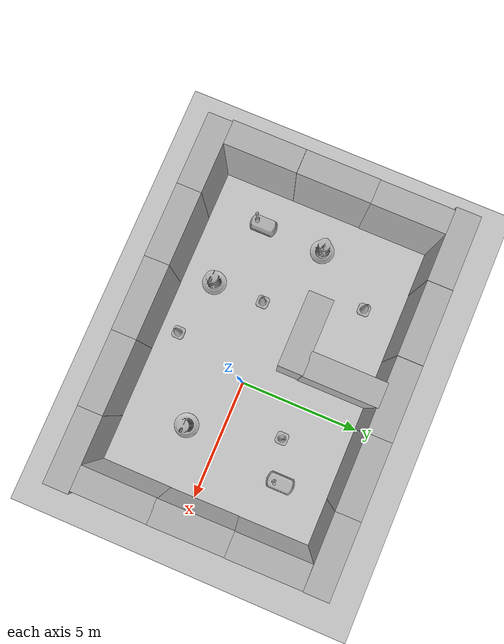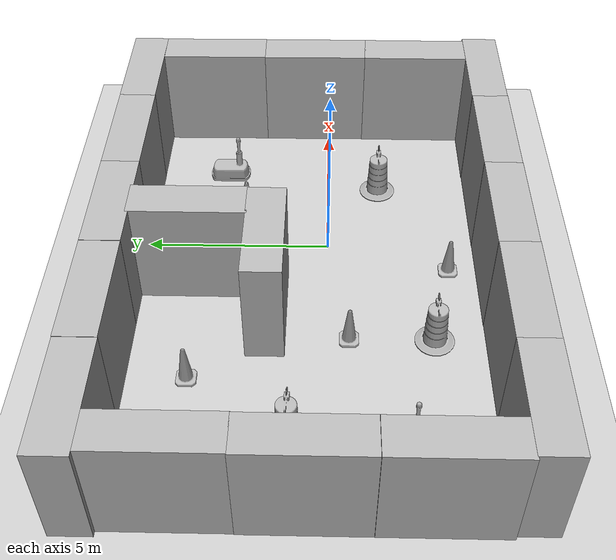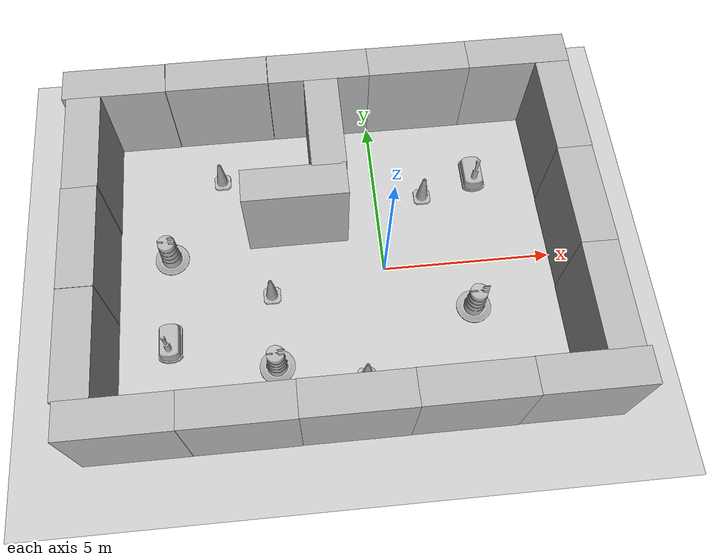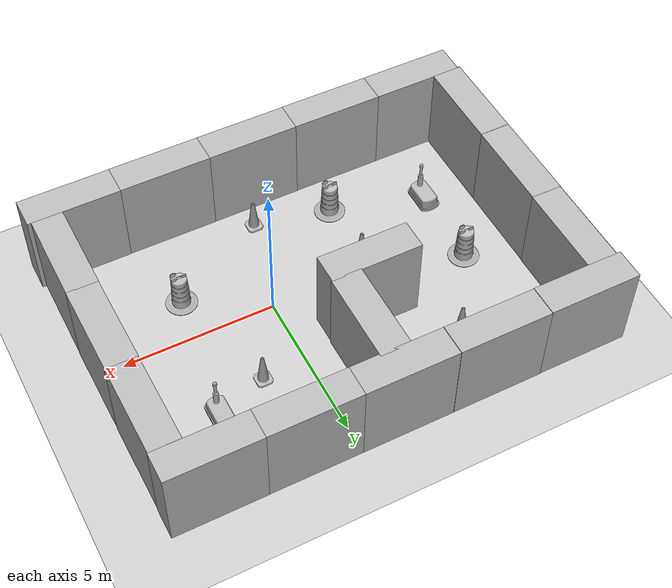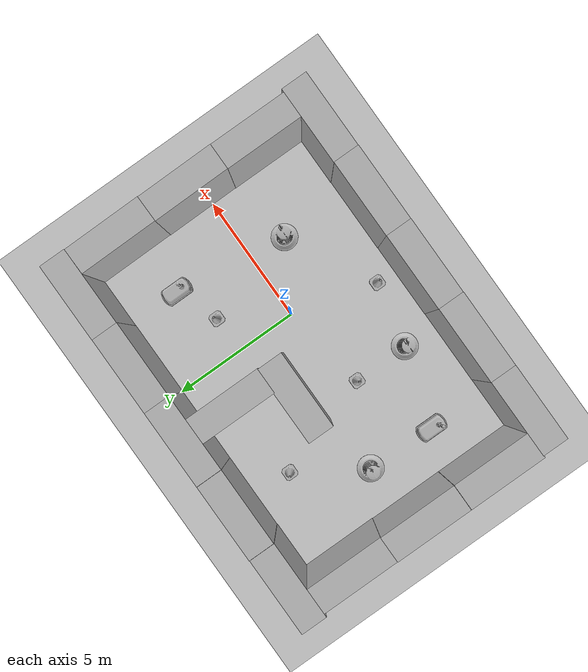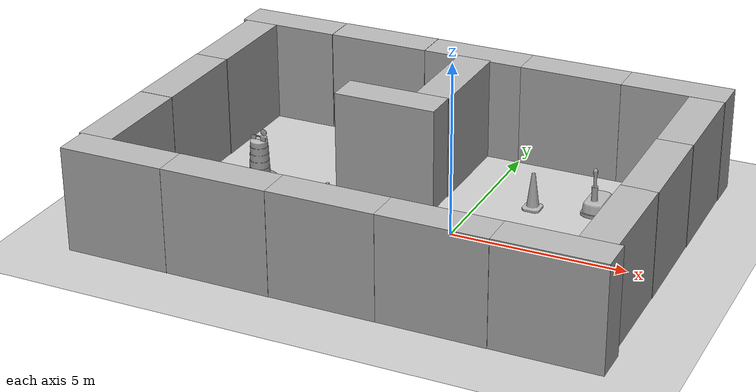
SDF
<sdf version="1.7">
 <world name="slam_vslam_world">
  <light name="sun" type="directional">
   <pose>0 0 10 0 -0 0</pose>
   <diffuse>0.8 0.8 0.8 1</diffuse>
   <specular>0.2 0.2 0.2 1</specular>
   <attenuation>
    <range>1000</range>
    <constant>0.9</constant>
    <linear>0.01</linear>
    <quadratic>0.001</quadratic>
   </attenuation>
   <direction>-0.5 0.1 -0.9</direction>
   <spot><inner_angle>0</inner_angle><outer_angle>0</outer_angle><falloff>0</falloff></spot>
  </light>
  <model name="ground_plane">
   <static>1</static>
   <link name="link">
    <collision name="collision">
     <geometry><plane><normal>0 0 1</normal><size>100 100</size></plane></geometry>
     <surface><friction><ode><mu>100</mu><mu2>50</mu2></ode></friction></surface>
    </collision>
    <visual name="visual">
     <cast_shadows>0</cast_shadows>
     <geometry><plane><normal>0 0 1</normal><size>100 100</size></plane></geometry>
     <material>
      <script><uri>file://media/materials/scripts/gazebo.material</uri><name>Gazebo/Grey</name></script>
     </material>
    </visual>
   </link>
  </model>
  <model name="cone_1">
   <link name="link">
    <collision name="collision">
     <geometry>
      <mesh><scale>10 10 10</scale><uri>model://construction_cone/meshes/construction_cone.dae</uri></mesh>
     </geometry>
    </collision>
    <visual name="visual">
     <geometry>
      <mesh><scale>10 10 10</scale><uri>model://construction_cone/meshes/construction_cone.dae</uri></mesh>
     </geometry>
    </visual>
    <inertial>
     <inertia><ixx>1</ixx><ixy>0</ixy><ixz>0</ixz><iyy>1</iyy><iyz>0</iyz><izz>1</izz></inertia>
     <mass>1</mass>
    </inertial>
   </link>
   <pose>1.45782 2.34445 -1e-05 -0 -0 -0</pose>
  </model>
  <model name="cone_2">
   <link name="link">
    <collision name="collision">
     <geometry>
      <mesh><scale>10 10 10</scale><uri>model://construction_cone/meshes/construction_cone.dae</uri></mesh>
     </geometry>
    </collision>
    <visual name="visual">
     <geometry>
      <mesh><scale>10 10 10</scale><uri>model://construction_cone/meshes/construction_cone.dae</uri></mesh>
     </geometry>
    </visual>
    <inertial>
     <inertia><ixx>1</ixx><ixy>0</ixy><ixz>0</ixz><iyy>1</iyy><iyz>0</iyz><izz>1</izz></inertia>
     <mass>1</mass>
    </inertial>
   </link>
   <pose>-3.41617 -0.555945 -8e-06 0 1e-06 0</pose>
  </model>
  <gravity>0 0 -9.8</gravity>
  <magnetic_field>6e-06 2.3e-05 -4.2e-05</magnetic_field>
  <atmosphere type="adiabatic"/>
  <physics type="ode">
   <max_step_size>0.001</max_step_size>
   <real_time_factor>1</real_time_factor>
   <real_time_update_rate>1000</real_time_update_rate>
  </physics>
  <scene><ambient>0.4 0.4 0.4 1</ambient><background>0.7 0.7 0.7 1</background><shadows>1</shadows></scene>
  <audio><device>default</device></audio>
  <spherical_coordinates>
   <surface_model>EARTH_WGS84</surface_model>
   <latitude_deg>0</latitude_deg>
   <longitude_deg>0</longitude_deg>
   <elevation>0</elevation>
   <heading_deg>0</heading_deg>
  </spherical_coordinates>
  <model name="Construction Cone">
   <link name="link">
    <collision name="collision">
     <geometry>
      <mesh><scale>10 10 10</scale><uri>model://construction_cone/meshes/construction_cone.dae</uri></mesh>
     </geometry>
    </collision>
    <visual name="visual">
     <geometry>
      <mesh><scale>10 10 10</scale><uri>model://construction_cone/meshes/construction_cone.dae</uri></mesh>
     </geometry>
    </visual>
    <inertial>
     <inertia><ixx>1</ixx><ixy>0</ixy><ixz>0</ixz><iyy>1</iyy><iyz>0</iyz><izz>1</izz></inertia>
     <mass>1</mass>
    </inertial>
   </link>
   <pose>-0.894643 -3.2708 -0 0 -1e-06 0</pose>
  </model>
  <model name="warehouse_robot">
   <static>1</static>
   <link name="link">
    <visual name="visual">
     <geometry><mesh><uri>model://warehouse_robot/meshes/robot.dae</uri></mesh></geometry>
    </visual>
    <collision name="collision_base">
     <pose>0 0 0.20437 0 -0 0</pose>
     <geometry><box><size>0.55508 1.0228 0.40874</size></box></geometry>
    </collision>
    <collision name="collision_bumper">
     <pose>0 0 0.062205 0 -0 0</pose>
     <geometry><box><size>0.67266 1.17126 0.12441</size></box></geometry>
    </collision>
    <collision name="collision_column_large">
     <pose>0 -0.27539 0.43738 0 -0 0</pose>
     <geometry><cylinder><radius>0.08652</radius><length>0.87476</length></cylinder></geometry>
    </collision>
    <collision name="collision_column_small">
     <pose>0 -0.27539 0.70424 0 -0 0</pose>
     <geometry><cylinder><radius>0.04261</radius><length>1.40848</length></cylinder></geometry>
    </collision>
   </link>
   <pose>3.12652 2.96342 0 0 -0 0</pose>
  </model>
  <model name="Construction Barrel">
   <link name="link">
    <inertial>
     <pose>0 0 0.4 0 -0 0</pose>
     <mass>500</mass>
     <inertia><ixx>51.2096</ixx><iyy>51.2096</iyy><izz>25</izz><ixy>0</ixy><ixz>0</ixz><iyz>0</iyz></inertia>
    </inertial>
    <collision name="collision">
     <geometry><mesh><uri>model://construction_barrel/meshes/construction_barrel.dae</uri></mesh></geometry>
    </collision>
    <visual name="visual">
     <geometry><mesh><uri>model://construction_barrel/meshes/construction_barrel.dae</uri></mesh></geometry>
    </visual>
   </link>
   <pose>2.4751 -1.44484 -1e-06 3e-06 -2e-06 -0.000113</pose>
  </model>
  <model name="Construction Cone_0">
   <link name="link">
    <collision name="collision">
     <geometry>
      <mesh><scale>10 10 10</scale><uri>model://construction_cone/meshes/construction_cone.dae</uri></mesh>
     </geometry>
    </collision>
    <visual name="visual">
     <geometry>
      <mesh><scale>10 10 10</scale><uri>model://construction_cone/meshes/construction_cone.dae</uri></mesh>
     </geometry>
    </visual>
    <inertial>
     <inertia><ixx>1</ixx><ixy>0</ixy><ixz>0</ixz><iyy>1</iyy><iyz>0</iyz><izz>1</izz></inertia>
     <mass>1</mass>
    </inertial>
   </link>
   <pose>-4.73887 3.44133 -1e-05 -1e-06 0 0</pose>
  </model>
  <model name="Construction Barrel_0">
   <link name="link">
    <inertial>
     <pose>0 0 0.4 0 -0 0</pose>
     <mass>500</mass>
     <inertia><ixx>51.2096</ixx><iyy>51.2096</iyy><izz>25</izz><ixy>0</ixy><ixz>0</ixz><iyz>0</iyz></inertia>
    </inertial>
    <collision name="collision">
     <geometry><mesh><uri>model://construction_barrel/meshes/construction_barrel.dae</uri></mesh></geometry>
    </collision>
    <visual name="visual">
     <geometry><mesh><uri>model://construction_barrel/meshes/construction_barrel.dae</uri></mesh></geometry>
    </visual>
   </link>
   <pose>-3.40006 -2.73606 -1e-06 -8e-06 -2e-06 -3.6e-05</pose>
  </model>
  <model name="Construction Barrel_1">
   <link name="link">
    <inertial>
     <pose>0 0 0.4 0 -0 0</pose>
     <mass>500</mass>
     <inertia><ixx>51.2096</ixx><iyy>51.2096</iyy><izz>25</izz><ixy>0</ixy><ixz>0</ixz><iyz>0</iyz></inertia>
    </inertial>
    <collision name="collision">
     <geometry><mesh><uri>model://construction_barrel/meshes/construction_barrel.dae</uri></mesh></geometry>
    </collision>
    <visual name="visual">
     <geometry><mesh><uri>model://construction_barrel/meshes/construction_barrel.dae</uri></mesh></geometry>
    </visual>
   </link>
   <pose>-6.35459 0.914067 0 0 1e-06 -0.080897</pose>
  </model>
  <model name="brick_box_3x1x3">
   <static>1</static>
   <link name="chassis">
    <pose>0 0 1.5 0 -0 0</pose>
    <collision name="collision"><geometry><box><size>3 1 3</size></box></geometry></collision>
    <visual name="visual">
     <geometry><mesh><uri>model://brick_box_3x1x3/meshes/simple_box.dae</uri><scale>3 1 3</scale></mesh></geometry>
     <material>
      <script>
       <uri>model://brick_box_3x1x3/materials/scripts</uri>
       <uri>model://brick_box_3x1x3/materials/textures</uri>
       <name>BrickBox/Diffuse</name>
      </script>
     </material>
    </visual>
   </link>
   <pose>1.63962 -4.52222 0 0 -0 0</pose>
  </model>
  <model name="brick_box_3x1x3_0">
   <static>1</static>
   <link name="chassis">
    <pose>0 0 1.5 0 -0 0</pose>
    <collision name="collision"><geometry><box><size>3 1 3</size></box></geometry></collision>
    <visual name="visual">
     <geometry><mesh><uri>model://brick_box_3x1x3/meshes/simple_box.dae</uri><scale>3 1 3</scale></mesh></geometry>
     <material>
      <script>
       <uri>model://brick_box_3x1x3/materials/scripts</uri>
       <uri>model://brick_box_3x1x3/materials/textures</uri>
       <name>BrickBox/Diffuse</name>
      </script>
     </material>
    </visual>
   </link>
   <pose>-1.35256 -4.52771 0 0 -0 0</pose>
  </model>
  <model name="brick_box_3x1x3_1">
   <static>1</static>
   <link name="chassis">
    <pose>0 0 1.5 0 -0 0</pose>
    <collision name="collision"><geometry><box><size>3 1 3</size></box></geometry></collision>
    <visual name="visual">
     <geometry><mesh><uri>model://brick_box_3x1x3/meshes/simple_box.dae</uri><scale>3 1 3</scale></mesh></geometry>
     <material>
      <script>
       <uri>model://brick_box_3x1x3/materials/scripts</uri>
       <uri>model://brick_box_3x1x3/materials/textures</uri>
       <name>BrickBox/Diffuse</name>
      </script>
     </material>
    </visual>
   </link>
   <pose>-4.34382 -4.53573 0 0 -0 0</pose>
  </model>
  <model name="brick_box_3x1x3_2">
   <static>1</static>
   <link name="chassis">
    <pose>0 0 1.5 0 -0 0</pose>
    <collision name="collision"><geometry><box><size>3 1 3</size></box></geometry></collision>
    <visual name="visual">
     <geometry><mesh><uri>model://brick_box_3x1x3/meshes/simple_box.dae</uri><scale>3 1 3</scale></mesh></geometry>
     <material>
      <script>
       <uri>model://brick_box_3x1x3/materials/scripts</uri>
       <uri>model://brick_box_3x1x3/materials/textures</uri>
       <name>BrickBox/Diffuse</name>
      </script>
     </material>
    </visual>
   </link>
   <pose>-7.34059 -4.53875 0 0 -0 0</pose>
  </model>
  <model name="brick_box_3x1x3_3">
   <static>1</static>
   <link name="chassis">
    <pose>0 0 1.5 0 -0 0</pose>
    <collision name="collision"><geometry><box><size>3 1 3</size></box></geometry></collision>
    <visual name="visual">
     <geometry><mesh><uri>model://brick_box_3x1x3/meshes/simple_box.dae</uri><scale>3 1 3</scale></mesh></geometry>
     <material>
      <script>
       <uri>model://brick_box_3x1x3/materials/scripts</uri>
       <uri>model://brick_box_3x1x3/materials/textures</uri>
       <name>BrickBox/Diffuse</name>
      </script>
     </material>
    </visual>
   </link>
   <pose>4.62399 -4.51283 0 0 -0 0</pose>
  </model>
  <model name="brick_box_3x1x3_4">
   <static>1</static>
   <link name="chassis">
    <pose>0 0 1.5 0 -0 0</pose>
    <collision name="collision"><geometry><box><size>3 1 3</size></box></geometry></collision>
    <visual name="visual">
     <geometry><mesh><uri>model://brick_box_3x1x3/meshes/simple_box.dae</uri><scale>3 1 3</scale></mesh></geometry>
     <material>
      <script>
       <uri>model://brick_box_3x1x3/materials/scripts</uri>
       <uri>model://brick_box_3x1x3/materials/textures</uri>
       <name>BrickBox/Diffuse</name>
      </script>
     </material>
    </visual>
   </link>
   <pose>5.49899 -2.52766 0 0 -0 1.57009</pose>
  </model>
  <model name="brick_box_3x1x3_5">
   <static>1</static>
   <link name="chassis">
    <pose>0 0 1.5 0 -0 0</pose>
    <collision name="collision"><geometry><box><size>3 1 3</size></box></geometry></collision>
    <visual name="visual">
     <geometry><mesh><uri>model://brick_box_3x1x3/meshes/simple_box.dae</uri><scale>3 1 3</scale></mesh></geometry>
     <material>
      <script>
       <uri>model://brick_box_3x1x3/materials/scripts</uri>
       <uri>model://brick_box_3x1x3/materials/textures</uri>
       <name>BrickBox/Diffuse</name>
      </script>
     </material>
    </visual>
   </link>
   <pose>5.49641 0.445684 0 0 0 -1.56147</pose>
  </model>
  <model name="brick_box_3x1x3_5_clone">
   <static>1</static>
   <link name="chassis">
    <pose>0 0 1.5 0 -0 0</pose>
    <collision name="collision"><geometry><box><size>3 1 3</size></box></geometry></collision>
    <visual name="visual">
     <geometry><mesh><uri>model://brick_box_3x1x3/meshes/simple_box.dae</uri><scale>3 1 3</scale></mesh></geometry>
     <material>
      <script>
       <uri>model://brick_box_3x1x3/materials/scripts</uri>
       <uri>model://brick_box_3x1x3/materials/textures</uri>
       <name>BrickBox/Diffuse</name>
      </script>
     </material>
    </visual>
   </link>
   <pose>5.48095 3.44382 0 0 0 -1.56147</pose>
  </model>
  <model name="brick_box_3x1x3_2_clone">
   <static>1</static>
   <link name="chassis">
    <pose>0 0 1.5 0 -0 0</pose>
    <collision name="collision"><geometry><box><size>3 1 3</size></box></geometry></collision>
    <visual name="visual">
     <geometry><mesh><uri>model://brick_box_3x1x3/meshes/simple_box.dae</uri><scale>3 1 3</scale></mesh></geometry>
     <material>
      <script>
       <uri>model://brick_box_3x1x3/materials/scripts</uri>
       <uri>model://brick_box_3x1x3/materials/textures</uri>
       <name>BrickBox/Diffuse</name>
      </script>
     </material>
    </visual>
   </link>
   <pose>4.48405 5.44517 0 0 -0 0</pose>
  </model>
  <model name="brick_box_3x1x3_2_clone_0">
   <static>1</static>
   <link name="chassis">
    <pose>0 0 1.5 0 -0 0</pose>
    <collision name="collision"><geometry><box><size>3 1 3</size></box></geometry></collision>
    <visual name="visual">
     <geometry><mesh><uri>model://brick_box_3x1x3/meshes/simple_box.dae</uri><scale>3 1 3</scale></mesh></geometry>
     <material>
      <script>
       <uri>model://brick_box_3x1x3/materials/scripts</uri>
       <uri>model://brick_box_3x1x3/materials/textures</uri>
       <name>BrickBox/Diffuse</name>
      </script>
     </material>
    </visual>
   </link>
   <pose>1.49306 5.44066 0 0 -0 0</pose>
  </model>
  <model name="brick_box_3x1x3_2_clone_1">
   <static>1</static>
   <link name="chassis">
    <pose>0 0 1.5 0 -0 0</pose>
    <collision name="collision"><geometry><box><size>3 1 3</size></box></geometry></collision>
    <visual name="visual">
     <geometry><mesh><uri>model://brick_box_3x1x3/meshes/simple_box.dae</uri><scale>3 1 3</scale></mesh></geometry>
     <material>
      <script>
       <uri>model://brick_box_3x1x3/materials/scripts</uri>
       <uri>model://brick_box_3x1x3/materials/textures</uri>
       <name>BrickBox/Diffuse</name>
      </script>
     </material>
    </visual>
   </link>
   <pose>-1.50526 5.44222 0 0 -0 0</pose>
  </model>
  <model name="brick_box_3x1x3_2_clone_2">
   <static>1</static>
   <link name="chassis">
    <pose>0 0 1.5 0 -0 0</pose>
    <collision name="collision"><geometry><box><size>3 1 3</size></box></geometry></collision>
    <visual name="visual">
     <geometry><mesh><uri>model://brick_box_3x1x3/meshes/simple_box.dae</uri><scale>3 1 3</scale></mesh></geometry>
     <material>
      <script>
       <uri>model://brick_box_3x1x3/materials/scripts</uri>
       <uri>model://brick_box_3x1x3/materials/textures</uri>
       <name>BrickBox/Diffuse</name>
      </script>
     </material>
    </visual>
   </link>
   <pose>-4.51433 5.44102 0 0 -0 0</pose>
  </model>
  <model name="brick_box_3x1x3_2_clone_3">
   <static>1</static>
   <link name="chassis">
    <pose>0 0 1.5 0 -0 0</pose>
    <collision name="collision"><geometry><box><size>3 1 3</size></box></geometry></collision>
    <visual name="visual">
     <geometry><mesh><uri>model://brick_box_3x1x3/meshes/simple_box.dae</uri><scale>3 1 3</scale></mesh></geometry>
     <material>
      <script>
       <uri>model://brick_box_3x1x3/materials/scripts</uri>
       <uri>model://brick_box_3x1x3/materials/textures</uri>
       <name>BrickBox/Diffuse</name>
      </script>
     </material>
    </visual>
   </link>
   <pose>-7.52189 5.4286 0 0 -0 0</pose>
  </model>
  <model name="brick_box_3x1x3_4_clone">
   <static>1</static>
   <link name="chassis">
    <pose>0 0 1.5 0 -0 0</pose>
    <collision name="collision"><geometry><box><size>3 1 3</size></box></geometry></collision>
    <visual name="visual">
     <geometry><mesh><uri>model://brick_box_3x1x3/meshes/simple_box.dae</uri><scale>3 1 3</scale></mesh></geometry>
     <material>
      <script>
       <uri>model://brick_box_3x1x3/materials/scripts</uri>
       <uri>model://brick_box_3x1x3/materials/textures</uri>
       <name>BrickBox/Diffuse</name>
      </script>
     </material>
    </visual>
   </link>
   <pose>-8.41484 -2.55816 0 0 -0 1.57009</pose>
  </model>
  <model name="brick_box_3x1x3_4_clone_0">
   <static>1</static>
   <link name="chassis">
    <pose>0 0 1.5 0 -0 0</pose>
    <collision name="collision"><geometry><box><size>3 1 3</size></box></geometry></collision>
    <visual name="visual">
     <geometry><mesh><uri>model://brick_box_3x1x3/meshes/simple_box.dae</uri><scale>3 1 3</scale></mesh></geometry>
     <material>
      <script>
       <uri>model://brick_box_3x1x3/materials/scripts</uri>
       <uri>model://brick_box_3x1x3/materials/textures</uri>
       <name>BrickBox/Diffuse</name>
      </script>
     </material>
    </visual>
   </link>
   <pose>-8.41154 0.447632 0 0 -0 1.57009</pose>
  </model>
  <model name="brick_box_3x1x3_4_clone_1">
   <static>1</static>
   <link name="chassis">
    <pose>0 0 1.5 0 -0 0</pose>
    <collision name="collision"><geometry><box><size>3 1 3</size></box></geometry></collision>
    <visual name="visual">
     <geometry><mesh><uri>model://brick_box_3x1x3/meshes/simple_box.dae</uri><scale>3 1 3</scale></mesh></geometry>
     <material>
      <script>
       <uri>model://brick_box_3x1x3/materials/scripts</uri>
       <uri>model://brick_box_3x1x3/materials/textures</uri>
       <name>BrickBox/Diffuse</name>
      </script>
     </material>
    </visual>
   </link>
   <pose>-8.39461 3.43698 0 0 -0 1.57009</pose>
  </model>
  <model name="brick_box_3x1x3_4_clone_0_clone">
   <static>1</static>
   <link name="chassis">
    <pose>0 0 1.5 0 -0 0</pose>
    <collision name="collision"><geometry><box><size>3 1 3</size></box></geometry></collision>
    <visual name="visual">
     <geometry><mesh><uri>model://brick_box_3x1x3/meshes/simple_box.dae</uri><scale>3 1 3</scale></mesh></geometry>
     <material>
      <script>
       <uri>model://brick_box_3x1x3/materials/scripts</uri>
       <uri>model://brick_box_3x1x3/materials/textures</uri>
       <name>BrickBox/Diffuse</name>
      </script>
     </material>
    </visual>
   </link>
   <pose>-1.462 3.52256 0 0 -0 1.57009</pose>
  </model>
  <model name="brick_box_3x1x3_2_clone_2_clone">
   <static>1</static>
   <link name="chassis">
    <pose>0 0 1.5 0 -0 0</pose>
    <collision name="collision"><geometry><box><size>3 1 3</size></box></geometry></collision>
    <visual name="visual">
     <geometry><mesh><uri>model://brick_box_3x1x3/meshes/simple_box.dae</uri><scale>3 1 3</scale></mesh></geometry>
     <material>
      <script>
       <uri>model://brick_box_3x1x3/materials/scripts</uri>
       <uri>model://brick_box_3x1x3/materials/textures</uri>
       <name>BrickBox/Diffuse</name>
      </script>
     </material>
    </visual>
   </link>
   <pose>-2.49152 1.56535 0 0 -0 0</pose>
  </model>
  <model name="warehouse_robot_0">
   <static>1</static>
   <link name="link">
    <visual name="visual">
     <geometry><mesh><uri>model://warehouse_robot/meshes/robot.dae</uri></mesh></geometry>
    </visual>
    <collision name="collision_base">
     <pose>0 0 0.20437 0 -0 0</pose>
     <geometry><box><size>0.55508 1.0228 0.40874</size></box></geometry>
    </collision>
    <collision name="collision_bumper">
     <pose>0 0 0.062205 0 -0 0</pose>
     <geometry><box><size>0.67266 1.17126 0.12441</size></box></geometry>
    </collision>
    <collision name="collision_column_large">
     <pose>0 -0.27539 0.43738 0 -0 0</pose>
     <geometry><cylinder><radius>0.08652</radius><length>0.87476</length></cylinder></geometry>
    </collision>
    <collision name="collision_column_small">
     <pose>0 -0.27539 0.70424 0 -0 0</pose>
     <geometry><cylinder><radius>0.04261</radius><length>1.40848</length></cylinder></geometry>
    </collision>
   </link>
   <pose>-6.42155 -1.7812 0 0 -0 0</pose>
  </model>
 </world>
</sdf>
